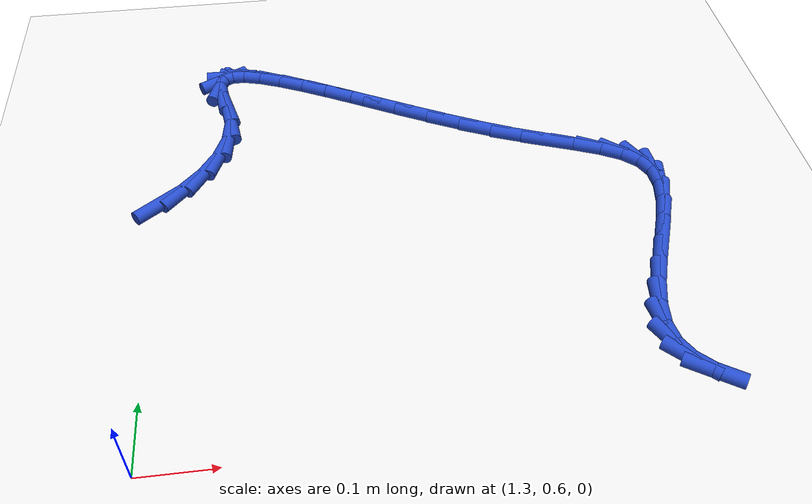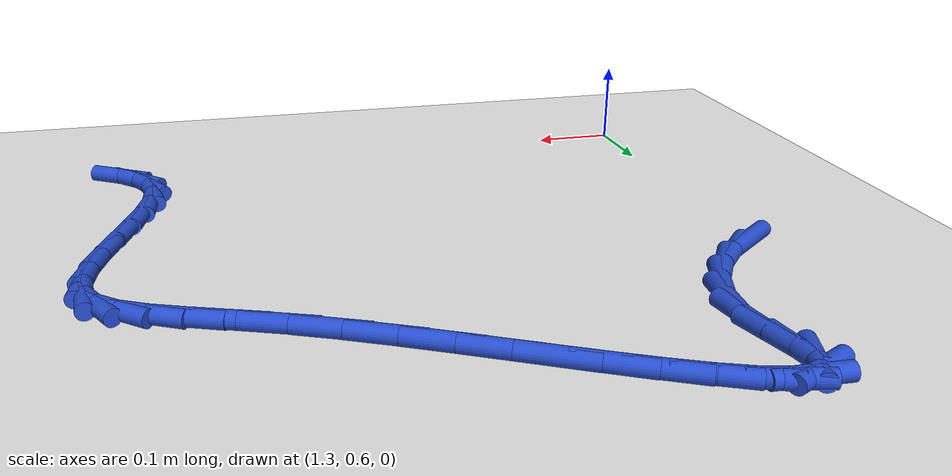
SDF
<sdf version="1.6">
 <world name="default">
  <model name="ground_plane">
   <static>1</static>
   <link name="link">
    <collision name="collision">
     <geometry><plane><normal>0 0 1</normal><size>100 100</size></plane></geometry>
     <surface><friction><ode><mu>100</mu><mu2>50</mu2></ode></friction></surface>
    </collision>
    <visual name="visual">
     <cast_shadows>0</cast_shadows>
     <geometry><plane><normal>0 0 1</normal><size>100 100</size></plane></geometry>
     <material>
      <script><uri>file://media/materials/scripts/gazebo.material</uri><name>Gazebo/WhiteGlow</name></script>
     </material>
    </visual>
   </link>
  </model>
  <model name="line">
   <link name="link_59">
    <pose>1.3073313212078126 1.029658782373113 0.01 0 1.57 0.6631665294617721</pose>
    <collision name="collision">
     <geometry><cylinder><radius>0.01</radius><length>0.08</length></cylinder></geometry>
    </collision>
    <visual name="visual">
     <material>
      <script><name>Gazebo/Blue</name><uri>file://media/materials/scripts/gazebo.material</uri></script>
     </material>
     <geometry><cylinder><radius>0.01</radius><length>0.08</length></cylinder></geometry>
    </visual>
   </link>
   <link name="link_60">
    <pose>1.3387065401874547 1.0541688299431722 0.01 0 1.57 0.8399617097013284</pose>
    <collision name="collision">
     <geometry><cylinder><radius>0.01</radius><length>0.08</length></cylinder></geometry>
    </collision>
    <visual name="visual">
     <material>
      <script><name>Gazebo/Blue</name><uri>file://media/materials/scripts/gazebo.material</uri></script>
     </material>
     <geometry><cylinder><radius>0.01</radius><length>0.08</length></cylinder></geometry>
    </visual>
   </link>
   <link name="link_61">
    <pose>1.3664632918491753 1.085132774459108 0.01 0 1.57 1.0162807211615397</pose>
    <collision name="collision">
     <geometry><cylinder><radius>0.01</radius><length>0.08</length></cylinder></geometry>
    </collision>
    <visual name="visual">
     <material>
      <script><name>Gazebo/Blue</name><uri>file://media/materials/scripts/gazebo.material</uri></script>
     </material>
     <geometry><cylinder><radius>0.01</radius><length>0.08</length></cylinder></geometry>
    </visual>
   </link>
   <link name="link_62">
    <pose>1.388535859249792 1.1207718857089404 0.01 0 1.57 1.2149446711378429</pose>
    <collision name="collision">
     <geometry><cylinder><radius>0.01</radius><length>0.08</length></cylinder></geometry>
    </collision>
    <visual name="visual">
     <material>
      <script><name>Gazebo/Blue</name><uri>file://media/materials/scripts/gazebo.material</uri></script>
     </material>
     <geometry><cylinder><radius>0.01</radius><length>0.08</length></cylinder></geometry>
    </visual>
   </link>
   <link name="link_63">
    <pose>1.4028585254461239 1.1593074334806899 0.01 0 1.57 1.4576205246210694</pose>
    <collision name="collision">
     <geometry><cylinder><radius>0.01</radius><length>0.08</length></cylinder></geometry>
    </collision>
    <visual name="visual">
     <material>
      <script><name>Gazebo/Blue</name><uri>file://media/materials/scripts/gazebo.material</uri></script>
     </material>
     <geometry><cylinder><radius>0.01</radius><length>0.08</length></cylinder></geometry>
    </visual>
   </link>
   <link name="link_64">
    <pose>1.4073655739645103 1.1989606874662364 0.01 0 1.57 -1.4282237736679075</pose>
    <collision name="collision">
     <geometry><cylinder><radius>0.01</radius><length>0.08</length></cylinder></geometry>
    </collision>
    <visual name="visual">
     <material>
      <script><name>Gazebo/Blue</name><uri>file://media/materials/scripts/gazebo.material</uri></script>
     </material>
     <geometry><cylinder><radius>0.01</radius><length>0.08</length></cylinder></geometry>
    </visual>
   </link>
   <link name="link_65">
    <pose>1.4018221910491404 1.2375780216332153 0.01 0 1.57 -1.3215268080966618</pose>
    <collision name="collision">
     <geometry><cylinder><radius>0.01</radius><length>0.08</length></cylinder></geometry>
    </collision>
    <visual name="visual">
     <material>
      <script><name>Gazebo/Blue</name><uri>file://media/materials/scripts/gazebo.material</uri></script>
     </material>
     <geometry><cylinder><radius>0.01</radius><length>0.08</length></cylinder></geometry>
    </visual>
   </link>
   <link name="link_66">
    <pose>1.3931780405376624 1.271534715988635 0.01 0 1.57 -1.4402197359903461</pose>
    <collision name="collision">
     <geometry><cylinder><radius>0.01</radius><length>0.08</length></cylinder></geometry>
    </collision>
    <visual name="visual">
     <material>
      <script><name>Gazebo/Blue</name><uri>file://media/materials/scripts/gazebo.material</uri></script>
     </material>
     <geometry><cylinder><radius>0.01</radius><length>0.08</length></cylinder></geometry>
    </visual>
   </link>
   <link name="link_67">
    <pose>1.3898326392571394 1.297009162118401 0.01 0 1.57 1.2465438670802291</pose>
    <collision name="collision">
     <geometry><cylinder><radius>0.01</radius><length>0.08</length></cylinder></geometry>
    </collision>
    <visual name="visual">
     <material>
      <script><name>Gazebo/Blue</name><uri>file://media/materials/scripts/gazebo.material</uri></script>
     </material>
     <geometry><cylinder><radius>0.01</radius><length>0.08</length></cylinder></geometry>
    </visual>
   </link>
   <link name="link_68">
    <pose>1.3951484483361516 1.3128245833693972 0.01 0 1.57 0.4925253742733426</pose>
    <collision name="collision">
     <geometry><cylinder><radius>0.01</radius><length>0.08</length></cylinder></geometry>
    </collision>
    <visual name="visual">
     <material>
      <script><name>Gazebo/Blue</name><uri>file://media/materials/scripts/gazebo.material</uri></script>
     </material>
     <geometry><cylinder><radius>0.01</radius><length>0.08</length></cylinder></geometry>
    </visual>
   </link>
   <link name="link_69">
    <pose>1.4084139624288243 1.3199433408248649 0.01 0 1.57 -0.027178209342349713</pose>
    <collision name="collision">
     <geometry><cylinder><radius>0.01</radius><length>0.08</length></cylinder></geometry>
    </collision>
    <visual name="visual">
     <material>
      <script><name>Gazebo/Blue</name><uri>file://media/materials/scripts/gazebo.material</uri></script>
     </material>
     <geometry><cylinder><radius>0.01</radius><length>0.08</length></cylinder></geometry>
    </visual>
   </link>
   <link name="link_70">
    <pose>1.4288008757315973 1.3193891245623415 0.01 0 1.57 -0.263708274332721</pose>
    <collision name="collision">
     <geometry><cylinder><radius>0.01</radius><length>0.08</length></cylinder></geometry>
    </collision>
    <visual name="visual">
     <material>
      <script><name>Gazebo/Blue</name><uri>file://media/materials/scripts/gazebo.material</uri></script>
     </material>
     <geometry><cylinder><radius>0.01</radius><length>0.08</length></cylinder></geometry>
    </visual>
   </link>
   <link name="link_71">
    <pose>1.4554808824409091 1.3121856246593635 0.01 0 1.57 -0.3797331203396081</pose>
    <collision name="collision">
     <geometry><cylinder><radius>0.01</radius><length>0.08</length></cylinder></geometry>
    </collision>
    <visual name="visual">
     <material>
      <script><name>Gazebo/Blue</name><uri>file://media/materials/scripts/gazebo.material</uri></script>
     </material>
     <geometry><cylinder><radius>0.01</radius><length>0.08</length></cylinder></geometry>
    </visual>
   </link>
   <link name="link_72">
    <pose>1.4876256767531997 1.2993565311934674 0.01 0 1.57 -0.44255822764517266</pose>
    <collision name="collision">
     <geometry><cylinder><radius>0.01</radius><length>0.08</length></cylinder></geometry>
    </collision>
    <visual name="visual">
     <material>
      <script><name>Gazebo/Blue</name><uri>file://media/materials/scripts/gazebo.material</uri></script>
     </material>
     <geometry><cylinder><radius>0.01</radius><length>0.08</length></cylinder></geometry>
    </visual>
   </link>
   <link name="link_73">
    <pose>1.5244069528649078 1.28192553424219 0.01 0 1.57 -0.47763040421585945</pose>
    <collision name="collision">
     <geometry><cylinder><radius>0.01</radius><length>0.08</length></cylinder></geometry>
    </collision>
    <visual name="visual">
     <material>
      <script><name>Gazebo/Blue</name><uri>file://media/materials/scripts/gazebo.material</uri></script>
     </material>
     <geometry><cylinder><radius>0.01</radius><length>0.08</length></cylinder></geometry>
    </visual>
   </link>
   <link name="link_74">
    <pose>1.5649964049724727 1.2609163238830672 0.01 0 1.57 -0.4957780890466638</pose>
    <collision name="collision">
     <geometry><cylinder><radius>0.01</radius><length>0.08</length></cylinder></geometry>
    </collision>
    <visual name="visual">
     <material>
      <script><name>Gazebo/Blue</name><uri>file://media/materials/scripts/gazebo.material</uri></script>
     </material>
     <geometry><cylinder><radius>0.01</radius><length>0.08</length></cylinder></geometry>
    </visual>
   </link>
   <link name="link_75">
    <pose>1.6085657272723333 1.2373525901936357 0.01 0 1.57 -0.501970929425132</pose>
    <collision name="collision">
     <geometry><cylinder><radius>0.01</radius><length>0.08</length></cylinder></geometry>
    </collision>
    <visual name="visual">
     <material>
      <script><name>Gazebo/Blue</name><uri>file://media/materials/scripts/gazebo.material</uri></script>
     </material>
     <geometry><cylinder><radius>0.01</radius><length>0.08</length></cylinder></geometry>
    </visual>
   </link>
   <link name="link_76">
    <pose>1.654286613960929 1.2122580232514328 0.01 0 1.57 -0.4983840273901671</pose>
    <collision name="collision">
     <geometry><cylinder><radius>0.01</radius><length>0.08</length></cylinder></geometry>
    </collision>
    <visual name="visual">
     <material>
      <script><name>Gazebo/Blue</name><uri>file://media/materials/scripts/gazebo.material</uri></script>
     </material>
     <geometry><cylinder><radius>0.01</radius><length>0.08</length></cylinder></geometry>
    </visual>
   </link>
   <link name="link_77">
    <pose>1.7013307592346991 1.1866563131339936 0.01 0 1.57 -0.4855412042509985</pose>
    <collision name="collision">
     <geometry><cylinder><radius>0.01</radius><length>0.08</length></cylinder></geometry>
    </collision>
    <visual name="visual">
     <material>
      <script><name>Gazebo/Blue</name><uri>file://media/materials/scripts/gazebo.material</uri></script>
     </material>
     <geometry><cylinder><radius>0.01</radius><length>0.08</length></cylinder></geometry>
    </visual>
   </link>
   <link name="link_78">
    <pose>1.7488698572900825 1.1615711499188561 0.01 0 1.57 -0.4626651060630524</pose>
    <collision name="collision">
     <geometry><cylinder><radius>0.01</radius><length>0.08</length></cylinder></geometry>
    </collision>
    <visual name="visual">
     <material>
      <script><name>Gazebo/Blue</name><uri>file://media/materials/scripts/gazebo.material</uri></script>
     </material>
     <geometry><cylinder><radius>0.01</radius><length>0.08</length></cylinder></geometry>
    </visual>
   </link>
   <link name="link_79">
    <pose>1.7960756023235185 1.1380262236835554 0.01 0 1.57 -0.4275607105560348</pose>
    <collision name="collision">
     <geometry><cylinder><radius>0.01</radius><length>0.08</length></cylinder></geometry>
    </collision>
    <visual name="visual">
     <material>
      <script><name>Gazebo/Blue</name><uri>file://media/materials/scripts/gazebo.material</uri></script>
     </material>
     <geometry><cylinder><radius>0.01</radius><length>0.08</length></cylinder></geometry>
    </visual>
   </link>
   <link name="link_80">
    <pose>1.842119688531446 1.1170452245056293 0.01 0 1.57 -0.3815676326231116</pose>
    <collision name="collision">
     <geometry><cylinder><radius>0.01</radius><length>0.08</length></cylinder></geometry>
    </collision>
    <visual name="visual">
     <material>
      <script><name>Gazebo/Blue</name><uri>file://media/materials/scripts/gazebo.material</uri></script>
     </material>
     <geometry><cylinder><radius>0.01</radius><length>0.08</length></cylinder></geometry>
    </visual>
   </link>
   <link name="link_81">
    <pose>1.8861082369021789 1.099395629755753 0.01 0 1.57 -0.36101320353402433</pose>
    <collision name="collision">
     <geometry><cylinder><radius>0.01</radius><length>0.08</length></cylinder></geometry>
    </collision>
    <visual name="visual">
     <material>
      <script><name>Gazebo/Blue</name><uri>file://media/materials/scripts/gazebo.material</uri></script>
     </material>
     <geometry><cylinder><radius>0.01</radius><length>0.08</length></cylinder></geometry>
    </visual>
   </link>
   <link name="link_82">
    <pose>1.9266936701131725 1.08407219169864 0.01 0 1.57 -0.39242027149229514</pose>
    <collision name="collision">
     <geometry><cylinder><radius>0.01</radius><length>0.08</length></cylinder></geometry>
    </collision>
    <visual name="visual">
     <material>
      <script><name>Gazebo/Blue</name><uri>file://media/materials/scripts/gazebo.material</uri></script>
     </material>
     <geometry><cylinder><radius>0.01</radius><length>0.08</length></cylinder></geometry>
    </visual>
   </link>
   <link name="link_83">
    <pose>1.9623365638008035 1.069320063012475 0.01 0 1.57 -0.5002119160550272</pose>
    <collision name="collision">
     <geometry><cylinder><radius>0.01</radius><length>0.08</length></cylinder></geometry>
    </collision>
    <visual name="visual">
     <material>
      <script><name>Gazebo/Blue</name><uri>file://media/materials/scripts/gazebo.material</uri></script>
     </material>
     <geometry><cylinder><radius>0.01</radius><length>0.08</length></cylinder></geometry>
    </visual>
   </link>
   <link name="link_84">
    <pose>1.99149680951593 1.05338172346364 0.01 0 1.57 -0.7290998109171792</pose>
    <collision name="collision">
     <geometry><cylinder><radius>0.01</radius><length>0.08</length></cylinder></geometry>
    </collision>
    <visual name="visual">
     <material>
      <script><name>Gazebo/Blue</name><uri>file://media/materials/scripts/gazebo.material</uri></script>
     </material>
     <geometry><cylinder><radius>0.01</radius><length>0.08</length></cylinder></geometry>
    </visual>
   </link>
   <link name="link_85">
    <pose>2.012634298809412 1.0344996528185155 0.01 0 1.57 -1.11354669794137</pose>
    <collision name="collision">
     <geometry><cylinder><radius>0.01</radius><length>0.08</length></cylinder></geometry>
    </collision>
    <visual name="visual">
     <material>
      <script><name>Gazebo/Blue</name><uri>file://media/materials/scripts/gazebo.material</uri></script>
     </material>
     <geometry><cylinder><radius>0.01</radius><length>0.08</length></cylinder></geometry>
    </visual>
   </link>
   <link name="link_86">
    <pose>2.0242298916056978 1.0109327120885059 0.01 0 1.57 -1.5047615289365293</pose>
    <collision name="collision">
     <geometry><cylinder><radius>0.01</radius><length>0.08</length></cylinder></geometry>
    </collision>
    <visual name="visual">
     <material>
      <script><name>Gazebo/Blue</name><uri>file://media/materials/scripts/gazebo.material</uri></script>
     </material>
     <geometry><cylinder><radius>0.01</radius><length>0.08</length></cylinder></geometry>
    </visual>
   </link>
   <link name="link_87">
    <pose>2.0261421751254605 0.9820160922309763 0.01 0 1.57 1.4006494799787141</pose>
    <collision name="collision">
     <geometry><cylinder><radius>0.01</radius><length>0.08</length></cylinder></geometry>
    </collision>
    <visual name="visual">
     <material>
      <script><name>Gazebo/Blue</name><uri>file://media/materials/scripts/gazebo.material</uri></script>
     </material>
     <geometry><cylinder><radius>0.01</radius><length>0.08</length></cylinder></geometry>
    </visual>
   </link>
   <link name="link_88">
    <pose>2.0204369952492263 0.9488093737835827 0.01 0 1.57 1.2749547606930252</pose>
    <collision name="collision">
     <geometry><cylinder><radius>0.01</radius><length>0.08</length></cylinder></geometry>
    </collision>
    <visual name="visual">
     <material>
      <script><name>Gazebo/Blue</name><uri>file://media/materials/scripts/gazebo.material</uri></script>
     </material>
     <geometry><cylinder><radius>0.01</radius><length>0.08</length></cylinder></geometry>
    </visual>
   </link>
   <link name="link_89">
    <pose>2.009378714285807 0.9125272254332201 0.01 0 1.57 1.2156292865331073</pose>
    <collision name="collision">
     <geometry><cylinder><radius>0.01</radius><length>0.08</length></cylinder></geometry>
    </collision>
    <visual name="visual">
     <material>
      <script><name>Gazebo/Blue</name><uri>file://media/materials/scripts/gazebo.material</uri></script>
     </material>
     <geometry><cylinder><radius>0.01</radius><length>0.08</length></cylinder></geometry>
    </visual>
   </link>
   <link name="link_90">
    <pose>1.9952316945440103 0.874384315866781 0.01 0 1.57 1.2024428635031228</pose>
    <collision name="collision">
     <geometry><cylinder><radius>0.01</radius><length>0.08</length></cylinder></geometry>
    </collision>
    <visual name="visual">
     <material>
      <script><name>Gazebo/Blue</name><uri>file://media/materials/scripts/gazebo.material</uri></script>
     </material>
     <geometry><cylinder><radius>0.01</radius><length>0.08</length></cylinder></geometry>
    </visual>
   </link>
   <link name="link_91">
    <pose>1.9802602983326483 0.8355953137711614 0.01 0 1.57 1.2305304113092705</pose>
    <collision name="collision">
     <geometry><cylinder><radius>0.01</radius><length>0.08</length></cylinder></geometry>
    </collision>
    <visual name="visual">
     <material>
      <script><name>Gazebo/Blue</name><uri>file://media/materials/scripts/gazebo.material</uri></script>
     </material>
     <geometry><cylinder><radius>0.01</radius><length>0.08</length></cylinder></geometry>
    </visual>
   </link>
   <link name="link_92">
    <pose>1.9667288879605296 0.7973748878332532 0.01 0 1.57 1.3073652939145441</pose>
    <collision name="collision">
     <geometry><cylinder><radius>0.01</radius><length>0.08</length></cylinder></geometry>
    </collision>
    <visual name="visual">
     <material>
      <script><name>Gazebo/Blue</name><uri>file://media/materials/scripts/gazebo.material</uri></script>
     </material>
     <geometry><cylinder><radius>0.01</radius><length>0.08</length></cylinder></geometry>
    </visual>
   </link>
   <link name="link_93">
    <pose>1.9569018257364652 0.7609377067399523 0.01 0 1.57 1.4559204668276298</pose>
    <collision name="collision">
     <geometry><cylinder><radius>0.01</radius><length>0.08</length></cylinder></geometry>
    </collision>
    <visual name="visual">
     <material>
      <script><name>Gazebo/Blue</name><uri>file://media/materials/scripts/gazebo.material</uri></script>
     </material>
     <geometry><cylinder><radius>0.01</radius><length>0.08</length></cylinder></geometry>
    </visual>
   </link>
   <link name="link_94">
    <pose>1.9530434739692633 0.727498439178151 0.01 0 1.57 -1.4245176672123319</pose>
    <collision name="collision">
     <geometry><cylinder><radius>0.01</radius><length>0.08</length></cylinder></geometry>
    </collision>
    <visual name="visual">
     <material>
      <script><name>Gazebo/Blue</name><uri>file://media/materials/scripts/gazebo.material</uri></script>
     </material>
     <geometry><cylinder><radius>0.01</radius><length>0.08</length></cylinder></geometry>
    </visual>
   </link>
   <link name="link_95">
    <pose>1.9573545835231898 0.698237050663251 0.01 0 1.57 -1.0860379476114383</pose>
    <collision name="collision">
     <geometry><cylinder><radius>0.01</radius><length>0.08</length></cylinder></geometry>
    </collision>
    <visual name="visual">
     <material>
      <script><name>Gazebo/Blue</name><uri>file://media/materials/scripts/gazebo.material</uri></script>
     </material>
     <geometry><cylinder><radius>0.01</radius><length>0.08</length></cylinder></geometry>
    </visual>
   </link>
   <link name="link_96">
    <pose>1.9704108730532575 0.6734469717192884 0.01 0 1.57 -0.7927790599172204</pose>
    <collision name="collision">
     <geometry><cylinder><radius>0.01</radius><length>0.08</length></cylinder></geometry>
    </collision>
    <visual name="visual">
     <material>
      <script><name>Gazebo/Blue</name><uri>file://media/materials/scripts/gazebo.material</uri></script>
     </material>
     <geometry><cylinder><radius>0.01</radius><length>0.08</length></cylinder></geometry>
    </visual>
   </link>
   <link name="link_97">
    <pose>1.9910676030546537 0.6524830383297278 0.01 0 1.57 -0.5830757040427871</pose>
    <collision name="collision">
     <geometry><cylinder><radius>0.01</radius><length>0.08</length></cylinder></geometry>
    </collision>
    <visual name="visual">
     <material>
      <script><name>Gazebo/Blue</name><uri>file://media/materials/scripts/gazebo.material</uri></script>
     </material>
     <geometry><cylinder><radius>0.01</radius><length>0.08</length></cylinder></geometry>
    </visual>
   </link>
  </model>
 </world>
</sdf>
